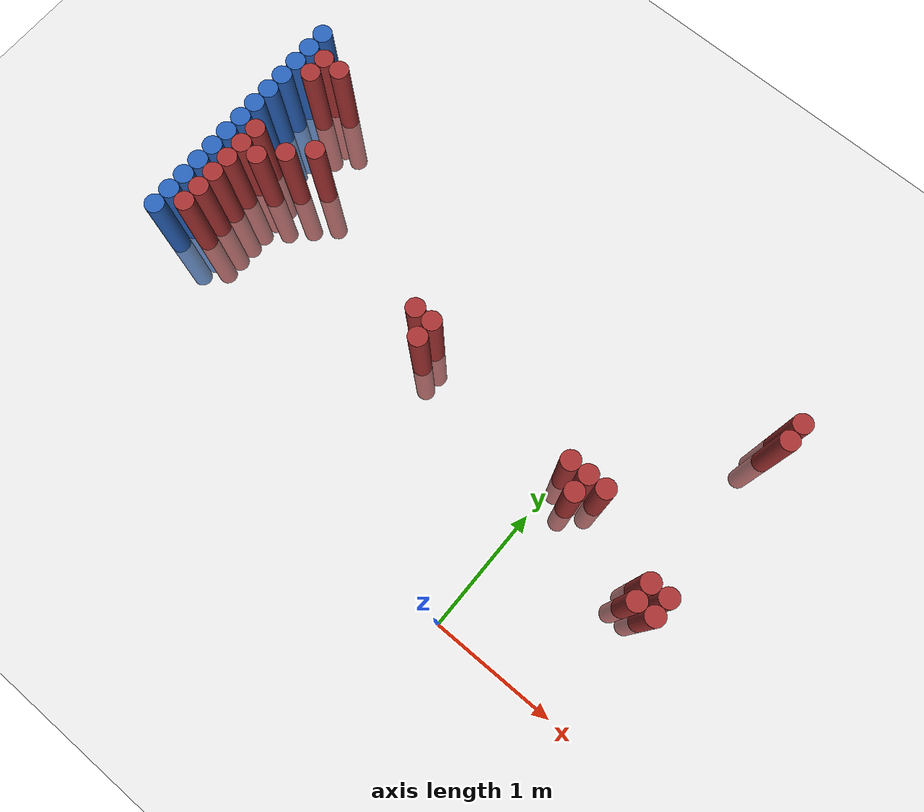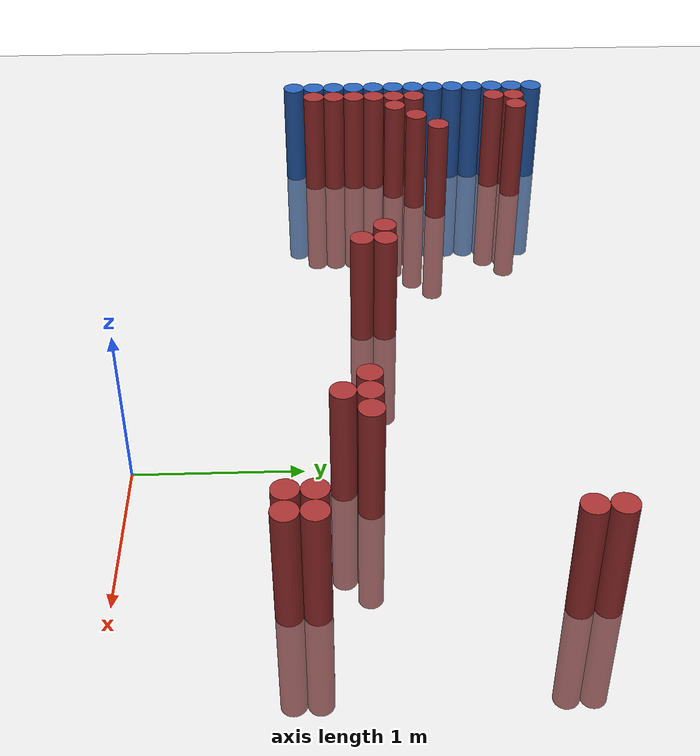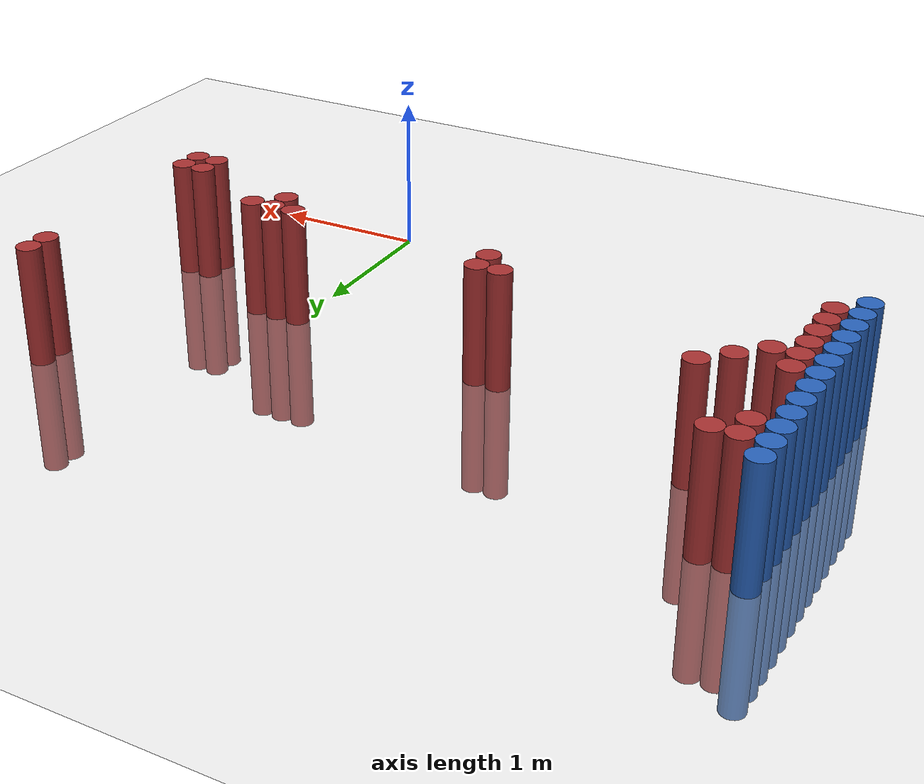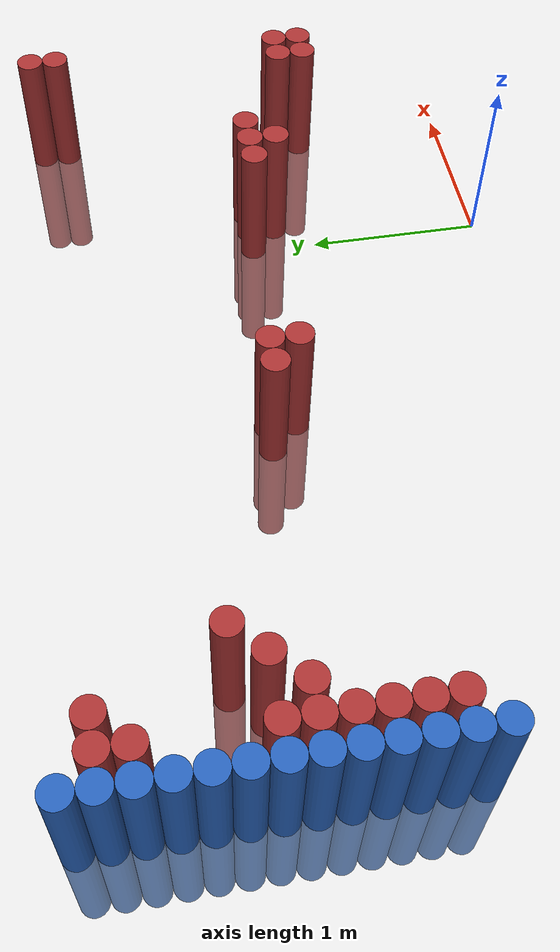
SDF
<sdf version="1.6">
 <world name="default">
  <model name="ground_plane">
   <static>1</static>
   <link name="link">
    <collision name="collision">
     <geometry><plane><normal>0 0 1</normal><size>100 100</size></plane></geometry>
     <surface><friction><ode><mu>100</mu><mu2>50</mu2></ode></friction></surface>
    </collision>
    <visual name="visual">
     <cast_shadows>0</cast_shadows>
     <geometry><plane><normal>0 0 1</normal><size>100 100</size></plane></geometry>
     <material>
      <script><uri>file://media/materials/scripts/gazebo.material</uri><name>Gazebo/Grey</name></script>
     </material>
    </visual>
   </link>
  </model>
  <model name="unit_cylinder_127">
   <static>1</static>
   <pose>-3.425000 0.925000 0.000000 0.000000 0.000000 0.000000</pose>
   <link name="link">
    <inertial>
     <mass>1</mass>
     <inertia><ixx>0.145833</ixx><ixy>0</ixy><ixz>0</ixz><iyy>0.145833</iyy><iyz>0</iyz><izz>0.125</izz></inertia>
    </inertial>
    <collision name="collision">
     <geometry><cylinder><radius>0.075000</radius><length>1.5</length></cylinder></geometry>
    </collision>
    <visual name="visual">
     <geometry><cylinder><radius>0.075000</radius><length>1.5</length></cylinder></geometry>
     <material>
      <ambient>0.152000 0.379000 0.720000 1</ambient>
      <diffuse>0.152000 0.379000 0.720000 1</diffuse>
     </material>
     <material>
      <script><name>Gazebo/Grey</name><uri>file://media/materials/scripts/gazebo.material</uri></script>
     </material>
    </visual>
   </link>
  </model>
  <model name="unit_cylinder_129">
   <static>1</static>
   <pose>-3.425000 1.075000 0.000000 0.000000 0.000000 0.000000</pose>
   <link name="link">
    <inertial>
     <mass>1</mass>
     <inertia><ixx>0.145833</ixx><ixy>0</ixy><ixz>0</ixz><iyy>0.145833</iyy><iyz>0</iyz><izz>0.125</izz></inertia>
    </inertial>
    <collision name="collision">
     <geometry><cylinder><radius>0.075000</radius><length>1.5</length></cylinder></geometry>
    </collision>
    <visual name="visual">
     <geometry><cylinder><radius>0.075000</radius><length>1.5</length></cylinder></geometry>
     <material>
      <ambient>0.152000 0.379000 0.720000 1</ambient>
      <diffuse>0.152000 0.379000 0.720000 1</diffuse>
     </material>
     <material>
      <script><name>Gazebo/Grey</name><uri>file://media/materials/scripts/gazebo.material</uri></script>
     </material>
    </visual>
   </link>
  </model>
  <model name="unit_cylinder_131">
   <static>1</static>
   <pose>-3.425000 1.225000 0.000000 0.000000 0.000000 0.000000</pose>
   <link name="link">
    <inertial>
     <mass>1</mass>
     <inertia><ixx>0.145833</ixx><ixy>0</ixy><ixz>0</ixz><iyy>0.145833</iyy><iyz>0</iyz><izz>0.125</izz></inertia>
    </inertial>
    <collision name="collision">
     <geometry><cylinder><radius>0.075000</radius><length>1.5</length></cylinder></geometry>
    </collision>
    <visual name="visual">
     <geometry><cylinder><radius>0.075000</radius><length>1.5</length></cylinder></geometry>
     <material>
      <ambient>0.152000 0.379000 0.720000 1</ambient>
      <diffuse>0.152000 0.379000 0.720000 1</diffuse>
     </material>
     <material>
      <script><name>Gazebo/Grey</name><uri>file://media/materials/scripts/gazebo.material</uri></script>
     </material>
    </visual>
   </link>
  </model>
  <model name="unit_cylinder_133">
   <static>1</static>
   <pose>-3.425000 1.375000 0.000000 0.000000 0.000000 0.000000</pose>
   <link name="link">
    <inertial>
     <mass>1</mass>
     <inertia><ixx>0.145833</ixx><ixy>0</ixy><ixz>0</ixz><iyy>0.145833</iyy><iyz>0</iyz><izz>0.125</izz></inertia>
    </inertial>
    <collision name="collision">
     <geometry><cylinder><radius>0.075000</radius><length>1.5</length></cylinder></geometry>
    </collision>
    <visual name="visual">
     <geometry><cylinder><radius>0.075000</radius><length>1.5</length></cylinder></geometry>
     <material>
      <ambient>0.152000 0.379000 0.720000 1</ambient>
      <diffuse>0.152000 0.379000 0.720000 1</diffuse>
     </material>
     <material>
      <script><name>Gazebo/Grey</name><uri>file://media/materials/scripts/gazebo.material</uri></script>
     </material>
    </visual>
   </link>
  </model>
  <model name="unit_cylinder_135">
   <static>1</static>
   <pose>-3.425000 1.525000 0.000000 0.000000 0.000000 0.000000</pose>
   <link name="link">
    <inertial>
     <mass>1</mass>
     <inertia><ixx>0.145833</ixx><ixy>0</ixy><ixz>0</ixz><iyy>0.145833</iyy><iyz>0</iyz><izz>0.125</izz></inertia>
    </inertial>
    <collision name="collision">
     <geometry><cylinder><radius>0.075000</radius><length>1.5</length></cylinder></geometry>
    </collision>
    <visual name="visual">
     <geometry><cylinder><radius>0.075000</radius><length>1.5</length></cylinder></geometry>
     <material>
      <ambient>0.152000 0.379000 0.720000 1</ambient>
      <diffuse>0.152000 0.379000 0.720000 1</diffuse>
     </material>
     <material>
      <script><name>Gazebo/Grey</name><uri>file://media/materials/scripts/gazebo.material</uri></script>
     </material>
    </visual>
   </link>
  </model>
  <model name="unit_cylinder_137">
   <static>1</static>
   <pose>-3.425000 1.675000 0.000000 0.000000 0.000000 0.000000</pose>
   <link name="link">
    <inertial>
     <mass>1</mass>
     <inertia><ixx>0.145833</ixx><ixy>0</ixy><ixz>0</ixz><iyy>0.145833</iyy><iyz>0</iyz><izz>0.125</izz></inertia>
    </inertial>
    <collision name="collision">
     <geometry><cylinder><radius>0.075000</radius><length>1.5</length></cylinder></geometry>
    </collision>
    <visual name="visual">
     <geometry><cylinder><radius>0.075000</radius><length>1.5</length></cylinder></geometry>
     <material>
      <ambient>0.152000 0.379000 0.720000 1</ambient>
      <diffuse>0.152000 0.379000 0.720000 1</diffuse>
     </material>
     <material>
      <script><name>Gazebo/Grey</name><uri>file://media/materials/scripts/gazebo.material</uri></script>
     </material>
    </visual>
   </link>
  </model>
  <model name="unit_cylinder_139">
   <static>1</static>
   <pose>-3.425000 1.825000 0.000000 0.000000 0.000000 0.000000</pose>
   <link name="link">
    <inertial>
     <mass>1</mass>
     <inertia><ixx>0.145833</ixx><ixy>0</ixy><ixz>0</ixz><iyy>0.145833</iyy><iyz>0</iyz><izz>0.125</izz></inertia>
    </inertial>
    <collision name="collision">
     <geometry><cylinder><radius>0.075000</radius><length>1.5</length></cylinder></geometry>
    </collision>
    <visual name="visual">
     <geometry><cylinder><radius>0.075000</radius><length>1.5</length></cylinder></geometry>
     <material>
      <ambient>0.152000 0.379000 0.720000 1</ambient>
      <diffuse>0.152000 0.379000 0.720000 1</diffuse>
     </material>
     <material>
      <script><name>Gazebo/Grey</name><uri>file://media/materials/scripts/gazebo.material</uri></script>
     </material>
    </visual>
   </link>
  </model>
  <model name="unit_cylinder_141">
   <static>1</static>
   <pose>-3.425000 1.975000 0.000000 0.000000 0.000000 0.000000</pose>
   <link name="link">
    <inertial>
     <mass>1</mass>
     <inertia><ixx>0.145833</ixx><ixy>0</ixy><ixz>0</ixz><iyy>0.145833</iyy><iyz>0</iyz><izz>0.125</izz></inertia>
    </inertial>
    <collision name="collision">
     <geometry><cylinder><radius>0.075000</radius><length>1.5</length></cylinder></geometry>
    </collision>
    <visual name="visual">
     <geometry><cylinder><radius>0.075000</radius><length>1.5</length></cylinder></geometry>
     <material>
      <ambient>0.152000 0.379000 0.720000 1</ambient>
      <diffuse>0.152000 0.379000 0.720000 1</diffuse>
     </material>
     <material>
      <script><name>Gazebo/Grey</name><uri>file://media/materials/scripts/gazebo.material</uri></script>
     </material>
    </visual>
   </link>
  </model>
  <model name="unit_cylinder_143">
   <static>1</static>
   <pose>-3.425000 2.125000 0.000000 0.000000 0.000000 0.000000</pose>
   <link name="link">
    <inertial>
     <mass>1</mass>
     <inertia><ixx>0.145833</ixx><ixy>0</ixy><ixz>0</ixz><iyy>0.145833</iyy><iyz>0</iyz><izz>0.125</izz></inertia>
    </inertial>
    <collision name="collision">
     <geometry><cylinder><radius>0.075000</radius><length>1.5</length></cylinder></geometry>
    </collision>
    <visual name="visual">
     <geometry><cylinder><radius>0.075000</radius><length>1.5</length></cylinder></geometry>
     <material>
      <ambient>0.152000 0.379000 0.720000 1</ambient>
      <diffuse>0.152000 0.379000 0.720000 1</diffuse>
     </material>
     <material>
      <script><name>Gazebo/Grey</name><uri>file://media/materials/scripts/gazebo.material</uri></script>
     </material>
    </visual>
   </link>
  </model>
  <model name="unit_cylinder_145">
   <static>1</static>
   <pose>-3.425000 2.275000 0.000000 0.000000 0.000000 0.000000</pose>
   <link name="link">
    <inertial>
     <mass>1</mass>
     <inertia><ixx>0.145833</ixx><ixy>0</ixy><ixz>0</ixz><iyy>0.145833</iyy><iyz>0</iyz><izz>0.125</izz></inertia>
    </inertial>
    <collision name="collision">
     <geometry><cylinder><radius>0.075000</radius><length>1.5</length></cylinder></geometry>
    </collision>
    <visual name="visual">
     <geometry><cylinder><radius>0.075000</radius><length>1.5</length></cylinder></geometry>
     <material>
      <ambient>0.152000 0.379000 0.720000 1</ambient>
      <diffuse>0.152000 0.379000 0.720000 1</diffuse>
     </material>
     <material>
      <script><name>Gazebo/Grey</name><uri>file://media/materials/scripts/gazebo.material</uri></script>
     </material>
    </visual>
   </link>
  </model>
  <model name="unit_cylinder_147">
   <static>1</static>
   <pose>-3.425000 2.425000 0.000000 0.000000 0.000000 0.000000</pose>
   <link name="link">
    <inertial>
     <mass>1</mass>
     <inertia><ixx>0.145833</ixx><ixy>0</ixy><ixz>0</ixz><iyy>0.145833</iyy><iyz>0</iyz><izz>0.125</izz></inertia>
    </inertial>
    <collision name="collision">
     <geometry><cylinder><radius>0.075000</radius><length>1.5</length></cylinder></geometry>
    </collision>
    <visual name="visual">
     <geometry><cylinder><radius>0.075000</radius><length>1.5</length></cylinder></geometry>
     <material>
      <ambient>0.152000 0.379000 0.720000 1</ambient>
      <diffuse>0.152000 0.379000 0.720000 1</diffuse>
     </material>
     <material>
      <script><name>Gazebo/Grey</name><uri>file://media/materials/scripts/gazebo.material</uri></script>
     </material>
    </visual>
   </link>
  </model>
  <model name="unit_cylinder_149">
   <static>1</static>
   <pose>-3.425000 2.575000 0.000000 0.000000 0.000000 0.000000</pose>
   <link name="link">
    <inertial>
     <mass>1</mass>
     <inertia><ixx>0.145833</ixx><ixy>0</ixy><ixz>0</ixz><iyy>0.145833</iyy><iyz>0</iyz><izz>0.125</izz></inertia>
    </inertial>
    <collision name="collision">
     <geometry><cylinder><radius>0.075000</radius><length>1.5</length></cylinder></geometry>
    </collision>
    <visual name="visual">
     <geometry><cylinder><radius>0.075000</radius><length>1.5</length></cylinder></geometry>
     <material>
      <ambient>0.152000 0.379000 0.720000 1</ambient>
      <diffuse>0.152000 0.379000 0.720000 1</diffuse>
     </material>
     <material>
      <script><name>Gazebo/Grey</name><uri>file://media/materials/scripts/gazebo.material</uri></script>
     </material>
    </visual>
   </link>
  </model>
  <model name="unit_cylinder_151">
   <static>1</static>
   <pose>-3.425000 2.725000 0.000000 0.000000 0.000000 0.000000</pose>
   <link name="link">
    <inertial>
     <mass>1</mass>
     <inertia><ixx>0.145833</ixx><ixy>0</ixy><ixz>0</ixz><iyy>0.145833</iyy><iyz>0</iyz><izz>0.125</izz></inertia>
    </inertial>
    <collision name="collision">
     <geometry><cylinder><radius>0.075000</radius><length>1.5</length></cylinder></geometry>
    </collision>
    <visual name="visual">
     <geometry><cylinder><radius>0.075000</radius><length>1.5</length></cylinder></geometry>
     <material>
      <ambient>0.152000 0.379000 0.720000 1</ambient>
      <diffuse>0.152000 0.379000 0.720000 1</diffuse>
     </material>
     <material>
      <script><name>Gazebo/Grey</name><uri>file://media/materials/scripts/gazebo.material</uri></script>
     </material>
    </visual>
   </link>
  </model>
  <model name="unit_cylinder_227">
   <static>1</static>
   <pose>-3.425000 0.925000 0.000000 0.000000 0.000000 0.000000</pose>
   <link name="link">
    <inertial>
     <mass>1</mass>
     <inertia><ixx>0.145833</ixx><ixy>0</ixy><ixz>0</ixz><iyy>0.145833</iyy><iyz>0</iyz><izz>0.125</izz></inertia>
    </inertial>
    <collision name="collision">
     <geometry><cylinder><radius>0.075000</radius><length>1.5</length></cylinder></geometry>
    </collision>
    <visual name="visual">
     <geometry><cylinder><radius>0.075000</radius><length>1.5</length></cylinder></geometry>
     <material>
      <ambient>0.152000 0.379000 0.720000 1</ambient>
      <diffuse>0.152000 0.379000 0.720000 1</diffuse>
     </material>
     <material>
      <script><name>Gazebo/Grey</name><uri>file://media/materials/scripts/gazebo.material</uri></script>
     </material>
    </visual>
   </link>
  </model>
  <model name="unit_cylinder_228">
   <static>1</static>
   <pose>-3.425000 1.075000 0.000000 0.000000 0.000000 0.000000</pose>
   <link name="link">
    <inertial>
     <mass>1</mass>
     <inertia><ixx>0.145833</ixx><ixy>0</ixy><ixz>0</ixz><iyy>0.145833</iyy><iyz>0</iyz><izz>0.125</izz></inertia>
    </inertial>
    <collision name="collision">
     <geometry><cylinder><radius>0.075000</radius><length>1.5</length></cylinder></geometry>
    </collision>
    <visual name="visual">
     <geometry><cylinder><radius>0.075000</radius><length>1.5</length></cylinder></geometry>
     <material>
      <ambient>0.152000 0.379000 0.720000 1</ambient>
      <diffuse>0.152000 0.379000 0.720000 1</diffuse>
     </material>
     <material>
      <script><name>Gazebo/Grey</name><uri>file://media/materials/scripts/gazebo.material</uri></script>
     </material>
    </visual>
   </link>
  </model>
  <model name="unit_cylinder_229">
   <static>1</static>
   <pose>-3.425000 1.225000 0.000000 0.000000 0.000000 0.000000</pose>
   <link name="link">
    <inertial>
     <mass>1</mass>
     <inertia><ixx>0.145833</ixx><ixy>0</ixy><ixz>0</ixz><iyy>0.145833</iyy><iyz>0</iyz><izz>0.125</izz></inertia>
    </inertial>
    <collision name="collision">
     <geometry><cylinder><radius>0.075000</radius><length>1.5</length></cylinder></geometry>
    </collision>
    <visual name="visual">
     <geometry><cylinder><radius>0.075000</radius><length>1.5</length></cylinder></geometry>
     <material>
      <ambient>0.152000 0.379000 0.720000 1</ambient>
      <diffuse>0.152000 0.379000 0.720000 1</diffuse>
     </material>
     <material>
      <script><name>Gazebo/Grey</name><uri>file://media/materials/scripts/gazebo.material</uri></script>
     </material>
    </visual>
   </link>
  </model>
  <model name="unit_cylinder_230">
   <static>1</static>
   <pose>-3.425000 1.375000 0.000000 0.000000 0.000000 0.000000</pose>
   <link name="link">
    <inertial>
     <mass>1</mass>
     <inertia><ixx>0.145833</ixx><ixy>0</ixy><ixz>0</ixz><iyy>0.145833</iyy><iyz>0</iyz><izz>0.125</izz></inertia>
    </inertial>
    <collision name="collision">
     <geometry><cylinder><radius>0.075000</radius><length>1.5</length></cylinder></geometry>
    </collision>
    <visual name="visual">
     <geometry><cylinder><radius>0.075000</radius><length>1.5</length></cylinder></geometry>
     <material>
      <ambient>0.152000 0.379000 0.720000 1</ambient>
      <diffuse>0.152000 0.379000 0.720000 1</diffuse>
     </material>
     <material>
      <script><name>Gazebo/Grey</name><uri>file://media/materials/scripts/gazebo.material</uri></script>
     </material>
    </visual>
   </link>
  </model>
  <model name="unit_cylinder_231">
   <static>1</static>
   <pose>-3.425000 1.525000 0.000000 0.000000 0.000000 0.000000</pose>
   <link name="link">
    <inertial>
     <mass>1</mass>
     <inertia><ixx>0.145833</ixx><ixy>0</ixy><ixz>0</ixz><iyy>0.145833</iyy><iyz>0</iyz><izz>0.125</izz></inertia>
    </inertial>
    <collision name="collision">
     <geometry><cylinder><radius>0.075000</radius><length>1.5</length></cylinder></geometry>
    </collision>
    <visual name="visual">
     <geometry><cylinder><radius>0.075000</radius><length>1.5</length></cylinder></geometry>
     <material>
      <ambient>0.152000 0.379000 0.720000 1</ambient>
      <diffuse>0.152000 0.379000 0.720000 1</diffuse>
     </material>
     <material>
      <script><name>Gazebo/Grey</name><uri>file://media/materials/scripts/gazebo.material</uri></script>
     </material>
    </visual>
   </link>
  </model>
  <model name="unit_cylinder_232">
   <static>1</static>
   <pose>-3.425000 1.675000 0.000000 0.000000 0.000000 0.000000</pose>
   <link name="link">
    <inertial>
     <mass>1</mass>
     <inertia><ixx>0.145833</ixx><ixy>0</ixy><ixz>0</ixz><iyy>0.145833</iyy><iyz>0</iyz><izz>0.125</izz></inertia>
    </inertial>
    <collision name="collision">
     <geometry><cylinder><radius>0.075000</radius><length>1.5</length></cylinder></geometry>
    </collision>
    <visual name="visual">
     <geometry><cylinder><radius>0.075000</radius><length>1.5</length></cylinder></geometry>
     <material>
      <ambient>0.152000 0.379000 0.720000 1</ambient>
      <diffuse>0.152000 0.379000 0.720000 1</diffuse>
     </material>
     <material>
      <script><name>Gazebo/Grey</name><uri>file://media/materials/scripts/gazebo.material</uri></script>
     </material>
    </visual>
   </link>
  </model>
  <model name="unit_cylinder_233">
   <static>1</static>
   <pose>-3.425000 1.825000 0.000000 0.000000 0.000000 0.000000</pose>
   <link name="link">
    <inertial>
     <mass>1</mass>
     <inertia><ixx>0.145833</ixx><ixy>0</ixy><ixz>0</ixz><iyy>0.145833</iyy><iyz>0</iyz><izz>0.125</izz></inertia>
    </inertial>
    <collision name="collision">
     <geometry><cylinder><radius>0.075000</radius><length>1.5</length></cylinder></geometry>
    </collision>
    <visual name="visual">
     <geometry><cylinder><radius>0.075000</radius><length>1.5</length></cylinder></geometry>
     <material>
      <ambient>0.152000 0.379000 0.720000 1</ambient>
      <diffuse>0.152000 0.379000 0.720000 1</diffuse>
     </material>
     <material>
      <script><name>Gazebo/Grey</name><uri>file://media/materials/scripts/gazebo.material</uri></script>
     </material>
    </visual>
   </link>
  </model>
  <model name="unit_cylinder_234">
   <static>1</static>
   <pose>-3.425000 1.975000 0.000000 0.000000 0.000000 0.000000</pose>
   <link name="link">
    <inertial>
     <mass>1</mass>
     <inertia><ixx>0.145833</ixx><ixy>0</ixy><ixz>0</ixz><iyy>0.145833</iyy><iyz>0</iyz><izz>0.125</izz></inertia>
    </inertial>
    <collision name="collision">
     <geometry><cylinder><radius>0.075000</radius><length>1.5</length></cylinder></geometry>
    </collision>
    <visual name="visual">
     <geometry><cylinder><radius>0.075000</radius><length>1.5</length></cylinder></geometry>
     <material>
      <ambient>0.152000 0.379000 0.720000 1</ambient>
      <diffuse>0.152000 0.379000 0.720000 1</diffuse>
     </material>
     <material>
      <script><name>Gazebo/Grey</name><uri>file://media/materials/scripts/gazebo.material</uri></script>
     </material>
    </visual>
   </link>
  </model>
  <model name="unit_cylinder_235">
   <static>1</static>
   <pose>-3.425000 2.125000 0.000000 0.000000 0.000000 0.000000</pose>
   <link name="link">
    <inertial>
     <mass>1</mass>
     <inertia><ixx>0.145833</ixx><ixy>0</ixy><ixz>0</ixz><iyy>0.145833</iyy><iyz>0</iyz><izz>0.125</izz></inertia>
    </inertial>
    <collision name="collision">
     <geometry><cylinder><radius>0.075000</radius><length>1.5</length></cylinder></geometry>
    </collision>
    <visual name="visual">
     <geometry><cylinder><radius>0.075000</radius><length>1.5</length></cylinder></geometry>
     <material>
      <ambient>0.152000 0.379000 0.720000 1</ambient>
      <diffuse>0.152000 0.379000 0.720000 1</diffuse>
     </material>
     <material>
      <script><name>Gazebo/Grey</name><uri>file://media/materials/scripts/gazebo.material</uri></script>
     </material>
    </visual>
   </link>
  </model>
  <model name="unit_cylinder_236">
   <static>1</static>
   <pose>-3.425000 2.275000 0.000000 0.000000 0.000000 0.000000</pose>
   <link name="link">
    <inertial>
     <mass>1</mass>
     <inertia><ixx>0.145833</ixx><ixy>0</ixy><ixz>0</ixz><iyy>0.145833</iyy><iyz>0</iyz><izz>0.125</izz></inertia>
    </inertial>
    <collision name="collision">
     <geometry><cylinder><radius>0.075000</radius><length>1.5</length></cylinder></geometry>
    </collision>
    <visual name="visual">
     <geometry><cylinder><radius>0.075000</radius><length>1.5</length></cylinder></geometry>
     <material>
      <ambient>0.152000 0.379000 0.720000 1</ambient>
      <diffuse>0.152000 0.379000 0.720000 1</diffuse>
     </material>
     <material>
      <script><name>Gazebo/Grey</name><uri>file://media/materials/scripts/gazebo.material</uri></script>
     </material>
    </visual>
   </link>
  </model>
  <model name="unit_cylinder_237">
   <static>1</static>
   <pose>-3.425000 2.425000 0.000000 0.000000 0.000000 0.000000</pose>
   <link name="link">
    <inertial>
     <mass>1</mass>
     <inertia><ixx>0.145833</ixx><ixy>0</ixy><ixz>0</ixz><iyy>0.145833</iyy><iyz>0</iyz><izz>0.125</izz></inertia>
    </inertial>
    <collision name="collision">
     <geometry><cylinder><radius>0.075000</radius><length>1.5</length></cylinder></geometry>
    </collision>
    <visual name="visual">
     <geometry><cylinder><radius>0.075000</radius><length>1.5</length></cylinder></geometry>
     <material>
      <ambient>0.152000 0.379000 0.720000 1</ambient>
      <diffuse>0.152000 0.379000 0.720000 1</diffuse>
     </material>
     <material>
      <script><name>Gazebo/Grey</name><uri>file://media/materials/scripts/gazebo.material</uri></script>
     </material>
    </visual>
   </link>
  </model>
  <model name="unit_cylinder_238">
   <static>1</static>
   <pose>-3.425000 2.575000 0.000000 0.000000 0.000000 0.000000</pose>
   <link name="link">
    <inertial>
     <mass>1</mass>
     <inertia><ixx>0.145833</ixx><ixy>0</ixy><ixz>0</ixz><iyy>0.145833</iyy><iyz>0</iyz><izz>0.125</izz></inertia>
    </inertial>
    <collision name="collision">
     <geometry><cylinder><radius>0.075000</radius><length>1.5</length></cylinder></geometry>
    </collision>
    <visual name="visual">
     <geometry><cylinder><radius>0.075000</radius><length>1.5</length></cylinder></geometry>
     <material>
      <ambient>0.152000 0.379000 0.720000 1</ambient>
      <diffuse>0.152000 0.379000 0.720000 1</diffuse>
     </material>
     <material>
      <script><name>Gazebo/Grey</name><uri>file://media/materials/scripts/gazebo.material</uri></script>
     </material>
    </visual>
   </link>
  </model>
  <model name="unit_cylinder_266">
   <static>1</static>
   <pose>-3.275000 1.075000 0.000000 0.000000 0.000000 0.000000</pose>
   <link name="link">
    <inertial>
     <mass>1</mass>
     <inertia><ixx>0.145833</ixx><ixy>0</ixy><ixz>0</ixz><iyy>0.145833</iyy><iyz>0</iyz><izz>0.125</izz></inertia>
    </inertial>
    <collision name="collision">
     <geometry><cylinder><radius>0.075000</radius><length>1.5</length></cylinder></geometry>
    </collision>
    <visual name="visual">
     <geometry><cylinder><radius>0.075000</radius><length>1.5</length></cylinder></geometry>
     <material>
      <ambient>0.648000 0.192000 0.192000 1</ambient>
      <diffuse>0.648000 0.192000 0.192000 1</diffuse>
     </material>
     <material>
      <script><name>Gazebo/Grey</name><uri>file://media/materials/scripts/gazebo.material</uri></script>
     </material>
    </visual>
   </link>
  </model>
  <model name="unit_cylinder_267">
   <static>1</static>
   <pose>-3.275000 1.225000 0.000000 0.000000 0.000000 0.000000</pose>
   <link name="link">
    <inertial>
     <mass>1</mass>
     <inertia><ixx>0.145833</ixx><ixy>0</ixy><ixz>0</ixz><iyy>0.145833</iyy><iyz>0</iyz><izz>0.125</izz></inertia>
    </inertial>
    <collision name="collision">
     <geometry><cylinder><radius>0.075000</radius><length>1.5</length></cylinder></geometry>
    </collision>
    <visual name="visual">
     <geometry><cylinder><radius>0.075000</radius><length>1.5</length></cylinder></geometry>
     <material>
      <ambient>0.648000 0.192000 0.192000 1</ambient>
      <diffuse>0.648000 0.192000 0.192000 1</diffuse>
     </material>
     <material>
      <script><name>Gazebo/Grey</name><uri>file://media/materials/scripts/gazebo.material</uri></script>
     </material>
    </visual>
   </link>
  </model>
  <model name="unit_cylinder_268">
   <static>1</static>
   <pose>-3.275000 1.375000 0.000000 0.000000 0.000000 0.000000</pose>
   <link name="link">
    <inertial>
     <mass>1</mass>
     <inertia><ixx>0.145833</ixx><ixy>0</ixy><ixz>0</ixz><iyy>0.145833</iyy><iyz>0</iyz><izz>0.125</izz></inertia>
    </inertial>
    <collision name="collision">
     <geometry><cylinder><radius>0.075000</radius><length>1.5</length></cylinder></geometry>
    </collision>
    <visual name="visual">
     <geometry><cylinder><radius>0.075000</radius><length>1.5</length></cylinder></geometry>
     <material>
      <ambient>0.648000 0.192000 0.192000 1</ambient>
      <diffuse>0.648000 0.192000 0.192000 1</diffuse>
     </material>
     <material>
      <script><name>Gazebo/Grey</name><uri>file://media/materials/scripts/gazebo.material</uri></script>
     </material>
    </visual>
   </link>
  </model>
  <model name="unit_cylinder_269">
   <static>1</static>
   <pose>-3.275000 1.525000 0.000000 0.000000 0.000000 0.000000</pose>
   <link name="link">
    <inertial>
     <mass>1</mass>
     <inertia><ixx>0.145833</ixx><ixy>0</ixy><ixz>0</ixz><iyy>0.145833</iyy><iyz>0</iyz><izz>0.125</izz></inertia>
    </inertial>
    <collision name="collision">
     <geometry><cylinder><radius>0.075000</radius><length>1.5</length></cylinder></geometry>
    </collision>
    <visual name="visual">
     <geometry><cylinder><radius>0.075000</radius><length>1.5</length></cylinder></geometry>
     <material>
      <ambient>0.648000 0.192000 0.192000 1</ambient>
      <diffuse>0.648000 0.192000 0.192000 1</diffuse>
     </material>
     <material>
      <script><name>Gazebo/Grey</name><uri>file://media/materials/scripts/gazebo.material</uri></script>
     </material>
    </visual>
   </link>
  </model>
  <model name="unit_cylinder_270">
   <static>1</static>
   <pose>-3.275000 1.675000 0.000000 0.000000 0.000000 0.000000</pose>
   <link name="link">
    <inertial>
     <mass>1</mass>
     <inertia><ixx>0.145833</ixx><ixy>0</ixy><ixz>0</ixz><iyy>0.145833</iyy><iyz>0</iyz><izz>0.125</izz></inertia>
    </inertial>
    <collision name="collision">
     <geometry><cylinder><radius>0.075000</radius><length>1.5</length></cylinder></geometry>
    </collision>
    <visual name="visual">
     <geometry><cylinder><radius>0.075000</radius><length>1.5</length></cylinder></geometry>
     <material>
      <ambient>0.648000 0.192000 0.192000 1</ambient>
      <diffuse>0.648000 0.192000 0.192000 1</diffuse>
     </material>
     <material>
      <script><name>Gazebo/Grey</name><uri>file://media/materials/scripts/gazebo.material</uri></script>
     </material>
    </visual>
   </link>
  </model>
  <model name="unit_cylinder_271">
   <static>1</static>
   <pose>-3.275000 1.825000 0.000000 0.000000 0.000000 0.000000</pose>
   <link name="link">
    <inertial>
     <mass>1</mass>
     <inertia><ixx>0.145833</ixx><ixy>0</ixy><ixz>0</ixz><iyy>0.145833</iyy><iyz>0</iyz><izz>0.125</izz></inertia>
    </inertial>
    <collision name="collision">
     <geometry><cylinder><radius>0.075000</radius><length>1.5</length></cylinder></geometry>
    </collision>
    <visual name="visual">
     <geometry><cylinder><radius>0.075000</radius><length>1.5</length></cylinder></geometry>
     <material>
      <ambient>0.648000 0.192000 0.192000 1</ambient>
      <diffuse>0.648000 0.192000 0.192000 1</diffuse>
     </material>
     <material>
      <script><name>Gazebo/Grey</name><uri>file://media/materials/scripts/gazebo.material</uri></script>
     </material>
    </visual>
   </link>
  </model>
  <model name="unit_cylinder_272">
   <static>1</static>
   <pose>-3.275000 2.425000 0.000000 0.000000 0.000000 0.000000</pose>
   <link name="link">
    <inertial>
     <mass>1</mass>
     <inertia><ixx>0.145833</ixx><ixy>0</ixy><ixz>0</ixz><iyy>0.145833</iyy><iyz>0</iyz><izz>0.125</izz></inertia>
    </inertial>
    <collision name="collision">
     <geometry><cylinder><radius>0.075000</radius><length>1.5</length></cylinder></geometry>
    </collision>
    <visual name="visual">
     <geometry><cylinder><radius>0.075000</radius><length>1.5</length></cylinder></geometry>
     <material>
      <ambient>0.648000 0.192000 0.192000 1</ambient>
      <diffuse>0.648000 0.192000 0.192000 1</diffuse>
     </material>
     <material>
      <script><name>Gazebo/Grey</name><uri>file://media/materials/scripts/gazebo.material</uri></script>
     </material>
    </visual>
   </link>
  </model>
  <model name="unit_cylinder_273">
   <static>1</static>
   <pose>-3.275000 2.575000 0.000000 0.000000 0.000000 0.000000</pose>
   <link name="link">
    <inertial>
     <mass>1</mass>
     <inertia><ixx>0.145833</ixx><ixy>0</ixy><ixz>0</ixz><iyy>0.145833</iyy><iyz>0</iyz><izz>0.125</izz></inertia>
    </inertial>
    <collision name="collision">
     <geometry><cylinder><radius>0.075000</radius><length>1.5</length></cylinder></geometry>
    </collision>
    <visual name="visual">
     <geometry><cylinder><radius>0.075000</radius><length>1.5</length></cylinder></geometry>
     <material>
      <ambient>0.648000 0.192000 0.192000 1</ambient>
      <diffuse>0.648000 0.192000 0.192000 1</diffuse>
     </material>
     <material>
      <script><name>Gazebo/Grey</name><uri>file://media/materials/scripts/gazebo.material</uri></script>
     </material>
    </visual>
   </link>
  </model>
  <model name="unit_cylinder_283">
   <static>1</static>
   <pose>-3.125000 1.675000 0.000000 0.000000 0.000000 0.000000</pose>
   <link name="link">
    <inertial>
     <mass>1</mass>
     <inertia><ixx>0.145833</ixx><ixy>0</ixy><ixz>0</ixz><iyy>0.145833</iyy><iyz>0</iyz><izz>0.125</izz></inertia>
    </inertial>
    <collision name="collision">
     <geometry><cylinder><radius>0.075000</radius><length>1.5</length></cylinder></geometry>
    </collision>
    <visual name="visual">
     <geometry><cylinder><radius>0.075000</radius><length>1.5</length></cylinder></geometry>
     <material>
      <ambient>0.648000 0.192000 0.192000 1</ambient>
      <diffuse>0.648000 0.192000 0.192000 1</diffuse>
     </material>
     <material>
      <script><name>Gazebo/Grey</name><uri>file://media/materials/scripts/gazebo.material</uri></script>
     </material>
    </visual>
   </link>
  </model>
  <model name="unit_cylinder_284">
   <static>1</static>
   <pose>-3.125000 2.575000 0.000000 0.000000 0.000000 0.000000</pose>
   <link name="link">
    <inertial>
     <mass>1</mass>
     <inertia><ixx>0.145833</ixx><ixy>0</ixy><ixz>0</ixz><iyy>0.145833</iyy><iyz>0</iyz><izz>0.125</izz></inertia>
    </inertial>
    <collision name="collision">
     <geometry><cylinder><radius>0.075000</radius><length>1.5</length></cylinder></geometry>
    </collision>
    <visual name="visual">
     <geometry><cylinder><radius>0.075000</radius><length>1.5</length></cylinder></geometry>
     <material>
      <ambient>0.648000 0.192000 0.192000 1</ambient>
      <diffuse>0.648000 0.192000 0.192000 1</diffuse>
     </material>
     <material>
      <script><name>Gazebo/Grey</name><uri>file://media/materials/scripts/gazebo.material</uri></script>
     </material>
    </visual>
   </link>
  </model>
  <model name="unit_cylinder_294">
   <static>1</static>
   <pose>-2.975000 1.825000 0.000000 0.000000 0.000000 0.000000</pose>
   <link name="link">
    <inertial>
     <mass>1</mass>
     <inertia><ixx>0.145833</ixx><ixy>0</ixy><ixz>0</ixz><iyy>0.145833</iyy><iyz>0</iyz><izz>0.125</izz></inertia>
    </inertial>
    <collision name="collision">
     <geometry><cylinder><radius>0.075000</radius><length>1.5</length></cylinder></geometry>
    </collision>
    <visual name="visual">
     <geometry><cylinder><radius>0.075000</radius><length>1.5</length></cylinder></geometry>
     <material>
      <ambient>0.648000 0.192000 0.192000 1</ambient>
      <diffuse>0.648000 0.192000 0.192000 1</diffuse>
     </material>
     <material>
      <script><name>Gazebo/Grey</name><uri>file://media/materials/scripts/gazebo.material</uri></script>
     </material>
    </visual>
   </link>
  </model>
  <model name="unit_cylinder_298">
   <static>1</static>
   <pose>-2.825000 1.975000 0.000000 0.000000 0.000000 0.000000</pose>
   <link name="link">
    <inertial>
     <mass>1</mass>
     <inertia><ixx>0.145833</ixx><ixy>0</ixy><ixz>0</ixz><iyy>0.145833</iyy><iyz>0</iyz><izz>0.125</izz></inertia>
    </inertial>
    <collision name="collision">
     <geometry><cylinder><radius>0.075000</radius><length>1.5</length></cylinder></geometry>
    </collision>
    <visual name="visual">
     <geometry><cylinder><radius>0.075000</radius><length>1.5</length></cylinder></geometry>
     <material>
      <ambient>0.648000 0.192000 0.192000 1</ambient>
      <diffuse>0.648000 0.192000 0.192000 1</diffuse>
     </material>
     <material>
      <script><name>Gazebo/Grey</name><uri>file://media/materials/scripts/gazebo.material</uri></script>
     </material>
    </visual>
   </link>
  </model>
  <model name="unit_cylinder_313">
   <static>1</static>
   <pose>-1.475000 1.525000 0.000000 0.000000 0.000000 0.000000</pose>
   <link name="link">
    <inertial>
     <mass>1</mass>
     <inertia><ixx>0.145833</ixx><ixy>0</ixy><ixz>0</ixz><iyy>0.145833</iyy><iyz>0</iyz><izz>0.125</izz></inertia>
    </inertial>
    <collision name="collision">
     <geometry><cylinder><radius>0.075000</radius><length>1.5</length></cylinder></geometry>
    </collision>
    <visual name="visual">
     <geometry><cylinder><radius>0.075000</radius><length>1.5</length></cylinder></geometry>
     <material>
      <ambient>0.648000 0.192000 0.192000 1</ambient>
      <diffuse>0.648000 0.192000 0.192000 1</diffuse>
     </material>
     <material>
      <script><name>Gazebo/Grey</name><uri>file://media/materials/scripts/gazebo.material</uri></script>
     </material>
    </visual>
   </link>
  </model>
  <model name="unit_cylinder_322">
   <static>1</static>
   <pose>-1.325000 1.375000 0.000000 0.000000 0.000000 0.000000</pose>
   <link name="link">
    <inertial>
     <mass>1</mass>
     <inertia><ixx>0.145833</ixx><ixy>0</ixy><ixz>0</ixz><iyy>0.145833</iyy><iyz>0</iyz><izz>0.125</izz></inertia>
    </inertial>
    <collision name="collision">
     <geometry><cylinder><radius>0.075000</radius><length>1.5</length></cylinder></geometry>
    </collision>
    <visual name="visual">
     <geometry><cylinder><radius>0.075000</radius><length>1.5</length></cylinder></geometry>
     <material>
      <ambient>0.648000 0.192000 0.192000 1</ambient>
      <diffuse>0.648000 0.192000 0.192000 1</diffuse>
     </material>
     <material>
      <script><name>Gazebo/Grey</name><uri>file://media/materials/scripts/gazebo.material</uri></script>
     </material>
    </visual>
   </link>
  </model>
  <model name="unit_cylinder_323">
   <static>1</static>
   <pose>-1.325000 1.525000 0.000000 0.000000 0.000000 0.000000</pose>
   <link name="link">
    <inertial>
     <mass>1</mass>
     <inertia><ixx>0.145833</ixx><ixy>0</ixy><ixz>0</ixz><iyy>0.145833</iyy><iyz>0</iyz><izz>0.125</izz></inertia>
    </inertial>
    <collision name="collision">
     <geometry><cylinder><radius>0.075000</radius><length>1.5</length></cylinder></geometry>
    </collision>
    <visual name="visual">
     <geometry><cylinder><radius>0.075000</radius><length>1.5</length></cylinder></geometry>
     <material>
      <ambient>0.648000 0.192000 0.192000 1</ambient>
      <diffuse>0.648000 0.192000 0.192000 1</diffuse>
     </material>
     <material>
      <script><name>Gazebo/Grey</name><uri>file://media/materials/scripts/gazebo.material</uri></script>
     </material>
    </visual>
   </link>
  </model>
  <model name="unit_cylinder_342">
   <static>1</static>
   <pose>0.025000 1.375000 0.000000 0.000000 0.000000 0.000000</pose>
   <link name="link">
    <inertial>
     <mass>1</mass>
     <inertia><ixx>0.145833</ixx><ixy>0</ixy><ixz>0</ixz><iyy>0.145833</iyy><iyz>0</iyz><izz>0.125</izz></inertia>
    </inertial>
    <collision name="collision">
     <geometry><cylinder><radius>0.075000</radius><length>1.5</length></cylinder></geometry>
    </collision>
    <visual name="visual">
     <geometry><cylinder><radius>0.075000</radius><length>1.5</length></cylinder></geometry>
     <material>
      <ambient>0.648000 0.192000 0.192000 1</ambient>
      <diffuse>0.648000 0.192000 0.192000 1</diffuse>
     </material>
     <material>
      <script><name>Gazebo/Grey</name><uri>file://media/materials/scripts/gazebo.material</uri></script>
     </material>
    </visual>
   </link>
  </model>
  <model name="unit_cylinder_343">
   <static>1</static>
   <pose>0.175000 1.225000 0.000000 0.000000 0.000000 0.000000</pose>
   <link name="link">
    <inertial>
     <mass>1</mass>
     <inertia><ixx>0.145833</ixx><ixy>0</ixy><ixz>0</ixz><iyy>0.145833</iyy><iyz>0</iyz><izz>0.125</izz></inertia>
    </inertial>
    <collision name="collision">
     <geometry><cylinder><radius>0.075000</radius><length>1.5</length></cylinder></geometry>
    </collision>
    <visual name="visual">
     <geometry><cylinder><radius>0.075000</radius><length>1.5</length></cylinder></geometry>
     <material>
      <ambient>0.648000 0.192000 0.192000 1</ambient>
      <diffuse>0.648000 0.192000 0.192000 1</diffuse>
     </material>
     <material>
      <script><name>Gazebo/Grey</name><uri>file://media/materials/scripts/gazebo.material</uri></script>
     </material>
    </visual>
   </link>
  </model>
  <model name="unit_cylinder_344">
   <static>1</static>
   <pose>0.175000 1.375000 0.000000 0.000000 0.000000 0.000000</pose>
   <link name="link">
    <inertial>
     <mass>1</mass>
     <inertia><ixx>0.145833</ixx><ixy>0</ixy><ixz>0</ixz><iyy>0.145833</iyy><iyz>0</iyz><izz>0.125</izz></inertia>
    </inertial>
    <collision name="collision">
     <geometry><cylinder><radius>0.075000</radius><length>1.5</length></cylinder></geometry>
    </collision>
    <visual name="visual">
     <geometry><cylinder><radius>0.075000</radius><length>1.5</length></cylinder></geometry>
     <material>
      <ambient>0.648000 0.192000 0.192000 1</ambient>
      <diffuse>0.648000 0.192000 0.192000 1</diffuse>
     </material>
     <material>
      <script><name>Gazebo/Grey</name><uri>file://media/materials/scripts/gazebo.material</uri></script>
     </material>
    </visual>
   </link>
  </model>
  <model name="unit_cylinder_347">
   <static>1</static>
   <pose>0.325000 1.375000 0.000000 0.000000 0.000000 0.000000</pose>
   <link name="link">
    <inertial>
     <mass>1</mass>
     <inertia><ixx>0.145833</ixx><ixy>0</ixy><ixz>0</ixz><iyy>0.145833</iyy><iyz>0</iyz><izz>0.125</izz></inertia>
    </inertial>
    <collision name="collision">
     <geometry><cylinder><radius>0.075000</radius><length>1.5</length></cylinder></geometry>
    </collision>
    <visual name="visual">
     <geometry><cylinder><radius>0.075000</radius><length>1.5</length></cylinder></geometry>
     <material>
      <ambient>0.648000 0.192000 0.192000 1</ambient>
      <diffuse>0.648000 0.192000 0.192000 1</diffuse>
     </material>
     <material>
      <script><name>Gazebo/Grey</name><uri>file://media/materials/scripts/gazebo.material</uri></script>
     </material>
    </visual>
   </link>
  </model>
  <model name="unit_cylinder_363">
   <static>1</static>
   <pose>0.925000 0.925000 0.000000 0.000000 0.000000 0.000000</pose>
   <link name="link">
    <inertial>
     <mass>1</mass>
     <inertia><ixx>0.145833</ixx><ixy>0</ixy><ixz>0</ixz><iyy>0.145833</iyy><iyz>0</iyz><izz>0.125</izz></inertia>
    </inertial>
    <collision name="collision">
     <geometry><cylinder><radius>0.075000</radius><length>1.5</length></cylinder></geometry>
    </collision>
    <visual name="visual">
     <geometry><cylinder><radius>0.075000</radius><length>1.5</length></cylinder></geometry>
     <material>
      <ambient>0.648000 0.192000 0.192000 1</ambient>
      <diffuse>0.648000 0.192000 0.192000 1</diffuse>
     </material>
     <material>
      <script><name>Gazebo/Grey</name><uri>file://media/materials/scripts/gazebo.material</uri></script>
     </material>
    </visual>
   </link>
  </model>
  <model name="unit_cylinder_364">
   <static>1</static>
   <pose>0.925000 1.075000 0.000000 0.000000 0.000000 0.000000</pose>
   <link name="link">
    <inertial>
     <mass>1</mass>
     <inertia><ixx>0.145833</ixx><ixy>0</ixy><ixz>0</ixz><iyy>0.145833</iyy><iyz>0</iyz><izz>0.125</izz></inertia>
    </inertial>
    <collision name="collision">
     <geometry><cylinder><radius>0.075000</radius><length>1.5</length></cylinder></geometry>
    </collision>
    <visual name="visual">
     <geometry><cylinder><radius>0.075000</radius><length>1.5</length></cylinder></geometry>
     <material>
      <ambient>0.648000 0.192000 0.192000 1</ambient>
      <diffuse>0.648000 0.192000 0.192000 1</diffuse>
     </material>
     <material>
      <script><name>Gazebo/Grey</name><uri>file://media/materials/scripts/gazebo.material</uri></script>
     </material>
    </visual>
   </link>
  </model>
  <model name="unit_cylinder_372">
   <static>1</static>
   <pose>1.075000 0.925000 0.000000 0.000000 0.000000 0.000000</pose>
   <link name="link">
    <inertial>
     <mass>1</mass>
     <inertia><ixx>0.145833</ixx><ixy>0</ixy><ixz>0</ixz><iyy>0.145833</iyy><iyz>0</iyz><izz>0.125</izz></inertia>
    </inertial>
    <collision name="collision">
     <geometry><cylinder><radius>0.075000</radius><length>1.5</length></cylinder></geometry>
    </collision>
    <visual name="visual">
     <geometry><cylinder><radius>0.075000</radius><length>1.5</length></cylinder></geometry>
     <material>
      <ambient>0.648000 0.192000 0.192000 1</ambient>
      <diffuse>0.648000 0.192000 0.192000 1</diffuse>
     </material>
     <material>
      <script><name>Gazebo/Grey</name><uri>file://media/materials/scripts/gazebo.material</uri></script>
     </material>
    </visual>
   </link>
  </model>
  <model name="unit_cylinder_373">
   <static>1</static>
   <pose>1.075000 1.075000 0.000000 0.000000 0.000000 0.000000</pose>
   <link name="link">
    <inertial>
     <mass>1</mass>
     <inertia><ixx>0.145833</ixx><ixy>0</ixy><ixz>0</ixz><iyy>0.145833</iyy><iyz>0</iyz><izz>0.125</izz></inertia>
    </inertial>
    <collision name="collision">
     <geometry><cylinder><radius>0.075000</radius><length>1.5</length></cylinder></geometry>
    </collision>
    <visual name="visual">
     <geometry><cylinder><radius>0.075000</radius><length>1.5</length></cylinder></geometry>
     <material>
      <ambient>0.648000 0.192000 0.192000 1</ambient>
      <diffuse>0.648000 0.192000 0.192000 1</diffuse>
     </material>
     <material>
      <script><name>Gazebo/Grey</name><uri>file://media/materials/scripts/gazebo.material</uri></script>
     </material>
    </visual>
   </link>
  </model>
  <model name="unit_cylinder_374">
   <static>1</static>
   <pose>1.075000 2.425000 0.000000 0.000000 0.000000 0.000000</pose>
   <link name="link">
    <inertial>
     <mass>1</mass>
     <inertia><ixx>0.145833</ixx><ixy>0</ixy><ixz>0</ixz><iyy>0.145833</iyy><iyz>0</iyz><izz>0.125</izz></inertia>
    </inertial>
    <collision name="collision">
     <geometry><cylinder><radius>0.075000</radius><length>1.5</length></cylinder></geometry>
    </collision>
    <visual name="visual">
     <geometry><cylinder><radius>0.075000</radius><length>1.5</length></cylinder></geometry>
     <material>
      <ambient>0.648000 0.192000 0.192000 1</ambient>
      <diffuse>0.648000 0.192000 0.192000 1</diffuse>
     </material>
     <material>
      <script><name>Gazebo/Grey</name><uri>file://media/materials/scripts/gazebo.material</uri></script>
     </material>
    </visual>
   </link>
  </model>
  <model name="unit_cylinder_375">
   <static>1</static>
   <pose>1.075000 2.575000 0.000000 0.000000 0.000000 0.000000</pose>
   <link name="link">
    <inertial>
     <mass>1</mass>
     <inertia><ixx>0.145833</ixx><ixy>0</ixy><ixz>0</ixz><iyy>0.145833</iyy><iyz>0</iyz><izz>0.125</izz></inertia>
    </inertial>
    <collision name="collision">
     <geometry><cylinder><radius>0.075000</radius><length>1.5</length></cylinder></geometry>
    </collision>
    <visual name="visual">
     <geometry><cylinder><radius>0.075000</radius><length>1.5</length></cylinder></geometry>
     <material>
      <ambient>0.648000 0.192000 0.192000 1</ambient>
      <diffuse>0.648000 0.192000 0.192000 1</diffuse>
     </material>
     <material>
      <script><name>Gazebo/Grey</name><uri>file://media/materials/scripts/gazebo.material</uri></script>
     </material>
    </visual>
   </link>
  </model>
 </world>
</sdf>
